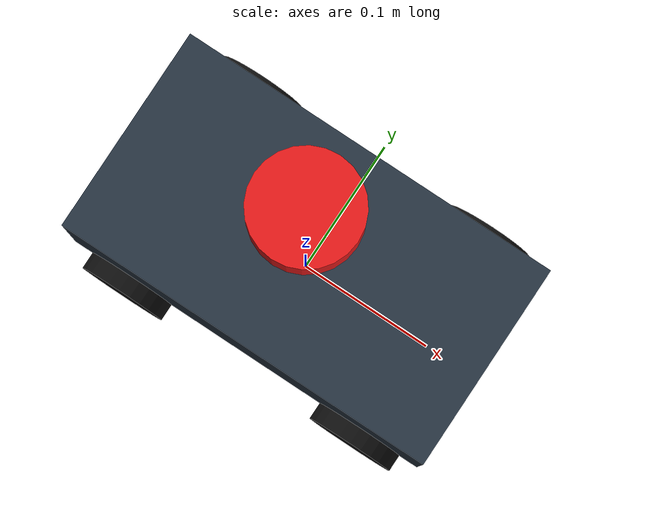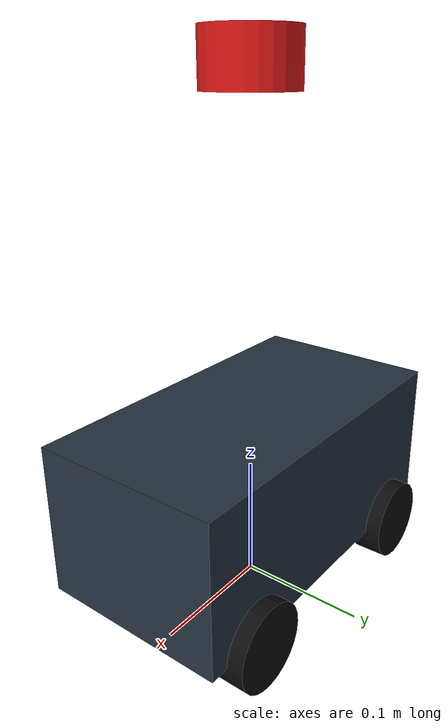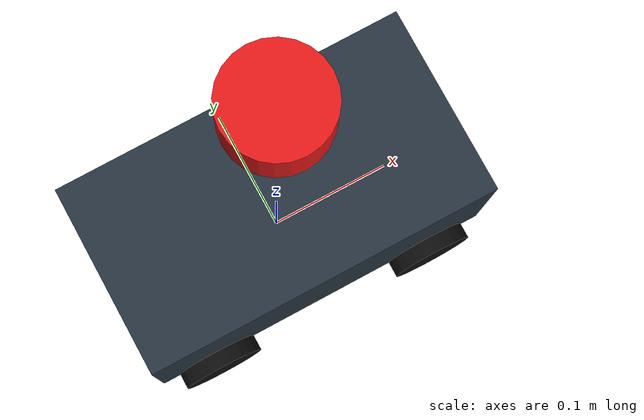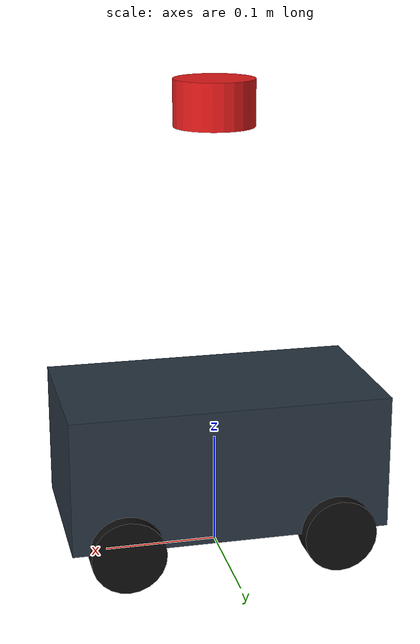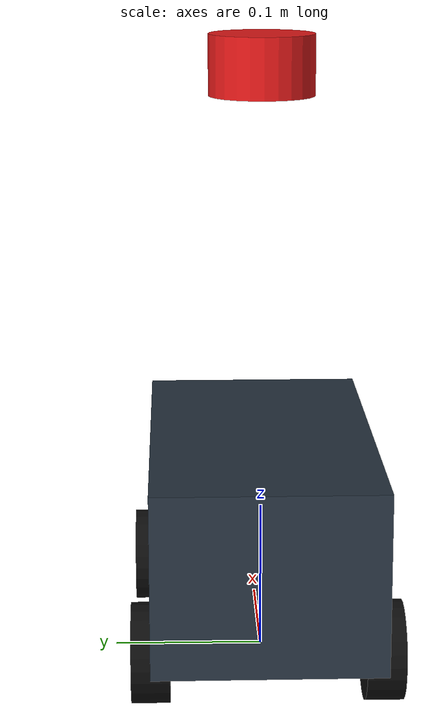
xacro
<?xml version="1.0"?>
<robot name="supermarketbot" xmlns:xacro="http://www.ros.org/wiki/xacro">

  <!-- Physical Properties (Đã cập nhật theo đo thực tế) -->
  <xacro:property name="robot_length" value="0.280"/> <!-- 28 cm dài -->
  <xacro:property name="robot_width"  value="0.150"/> <!-- 15 cm ngang -->
  <xacro:property name="robot_height" value="0.120"/> <!-- 12 cm chassis -->
  <xacro:property name="wheel_radius" value="0.0325"/> <!-- 6.5 cm đường kính bánh -->
  <xacro:property name="wheel_width"  value="0.025"/>
  <xacro:property name="lidar_z_offset" value="0.400"/> <!-- 40 cm từ đất lên mắt quét LiDAR -->

  <!-- Base Footprint (thương hiệu điểm trên mặt đất) -->
  <link name="base_footprint"/>

  <joint name="base_footprint_joint" type="fixed">
    <parent link="base_footprint"/>
    <child link="base_link"/>
    <origin xyz="0 0 ${wheel_radius}" rpy="0 0 0"/>
  </joint>

  <!-- Base Link (Tâm khung robot) -->
  <link name="base_link">
    <visual>
      <origin xyz="0 0 ${robot_height/2}" rpy="0 0 0"/>
      <geometry>
        <box size="${robot_length} ${robot_width} ${robot_height}"/>
      </geometry>
      <material name="chassis_color">
        <color rgba="0.15 0.20 0.25 1.0"/>
      </material>
    </visual>
    <collision>
      <origin xyz="0 0 ${robot_height/2}" rpy="0 0 0"/>
      <geometry>
        <box size="${robot_length} ${robot_width} ${robot_height}"/>
      </geometry>
    </collision>
  </link>

  <!-- YDLIDAR X3 Link (Gắn đỉnh robot, cao 40cm từ mặt đất) -->
  <link name="laser_frame">
    <visual>
      <origin xyz="0 0 0" rpy="0 0 0"/>
      <geometry>
        <cylinder radius="0.035" length="0.040"/>
      </geometry>
      <material name="lidar_color">
        <color rgba="0.9 0.1 0.1 1.0"/>
      </material>
    </visual>
  </link>

  <joint name="laser_joint" type="fixed">
    <parent link="base_link"/>
    <child link="laser_frame"/>
    <origin xyz="0 0 ${lidar_z_offset - wheel_radius}" rpy="0 0 0"/>
  </joint>

  <!-- IMU Link -->
  <link name="imu_link">
    <visual>
      <geometry>
        <box size="0.02 0.02 0.005"/>
      </geometry>
      <material name="imu_color">
        <color rgba="0.1 0.8 0.1 1.0"/>
      </material>
    </visual>
  </link>

  <joint name="imu_joint" type="fixed">
    <parent link="base_link"/>
    <child link="imu_link"/>
    <origin xyz="0 0 0.05" rpy="0 0 0"/>
  </joint>

  <!-- Wheels (4 bánh xe 4WD) -->
  <xacro:macro name="wheel" params="prefix x_reflect y_reflect">
    <link name="${prefix}_wheel">
      <visual>
        <origin xyz="0 0 0" rpy="${pi/2} 0 0"/>
        <geometry>
          <cylinder radius="${wheel_radius}" length="${wheel_width}"/>
        </geometry>
        <material name="wheel_color">
          <color rgba="0.05 0.05 0.05 1.0"/>
        </material>
      </visual>
    </link>

    <joint name="${prefix}_wheel_joint" type="continuous">
      <parent link="base_link"/>
      <child link="${prefix}_wheel"/>
      <origin xyz="${x_reflect * robot_length/3} ${y_reflect * robot_width/2} 0" rpy="0 0 0"/>
      <axis xyz="0 1 0"/>
    </joint>
  </xacro:macro>

  <xacro:wheel prefix="fl" x_reflect="1" y_reflect="1"/>
  <xacro:wheel prefix="fr" x_reflect="1" y_reflect="-1"/>
  <xacro:wheel prefix="rl" x_reflect="-1" y_reflect="1"/>
  <xacro:wheel prefix="rr" x_reflect="-1" y_reflect="-1"/>

</robot>
